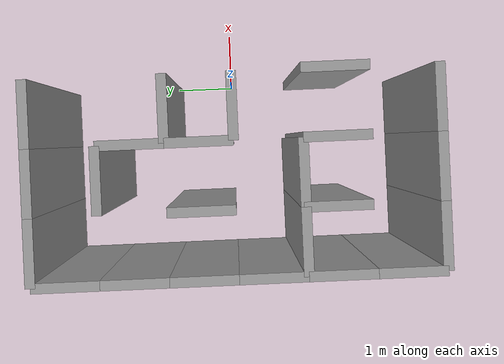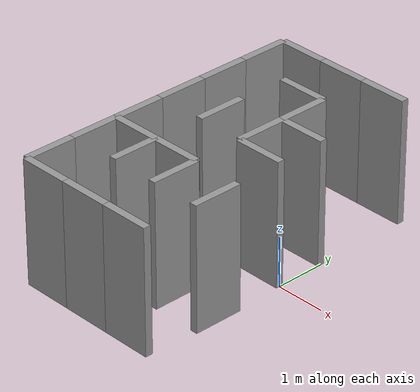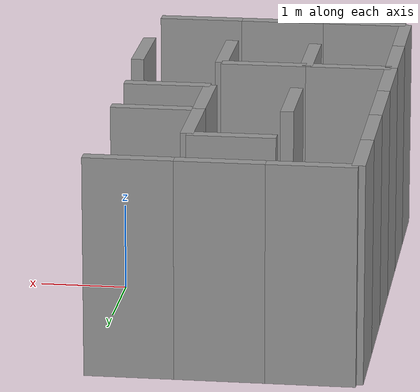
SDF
<sdf version="1.7">
 <model name="maze_6x6">
  <link name="mazeMap::Wall_102">
   <pose>-3 -1.5 0 0 -0 1.5708</pose>
   <inertial>
    <mass>1</mass>
    <inertia><ixx>1</ixx><ixy>0</ixy><ixz>0</ixz><iyy>1</iyy><iyz>0</iyz><izz>1</izz></inertia>
   </inertial>
   <visual name="Wall_102_Visual">
    <pose>0 0 1.25 0 -0 0</pose>
    <geometry><box><size>1 0.15 2.5</size></box></geometry>
    <material>
     <script><uri>file://media/materials/scripts/gazebo.material</uri><name>Gazebo/Grey</name></script>
     <ambient>1 1 1 1</ambient>
     <shader type="pixel"><normal_map>__default__</normal_map></shader>
     <diffuse>0.7 0.7 0.7 1</diffuse>
     <specular>0.01 0.01 0.01 1</specular>
     <emissive>0 0 0 1</emissive>
    </material>
    <meta><layer>0</layer></meta>
   </visual>
   <collision name="Wall_102_Collision">
    <pose>0 0 1.25 0 -0 0</pose>
    <geometry><box><size>1 0.15 2.5</size></box></geometry>
    <surface>
     <friction>
      <ode><mu>1</mu><mu2>1</mu2><fdir1>0 0 0</fdir1><slip1>0</slip1><slip2>0</slip2></ode>
      <torsional>
       <coefficient>1</coefficient>
       <patch_radius>0</patch_radius>
       <surface_radius>0</surface_radius>
       <use_patch_radius>1</use_patch_radius>
       <ode><slip>0</slip></ode>
      </torsional>
     </friction>
     <bounce><restitution_coefficient>0</restitution_coefficient><threshold>1e+06</threshold></bounce>
     <contact>
      <collide_without_contact>0</collide_without_contact>
      <collide_without_contact_bitmask>1</collide_without_contact_bitmask>
      <collide_bitmask>1</collide_bitmask>
      <ode>
       <soft_cfm>0</soft_cfm>
       <soft_erp>0.2</soft_erp>
       <kp>1e+13</kp>
       <kd>1</kd>
       <max_vel>0.01</max_vel>
       <min_depth>0</min_depth>
      </ode>
      <bullet>
       <split_impulse>1</split_impulse>
       <split_impulse_penetration_threshold>-0.01</split_impulse_penetration_threshold>
       <soft_cfm>0</soft_cfm>
       <soft_erp>0.2</soft_erp>
       <kp>1e+13</kp>
       <kd>1</kd>
      </bullet>
     </contact>
    </surface>
   </collision>
  </link>
  <link name="mazeMap::Wall_103">
   <pose>-2.5 -1 0 0 -0 0</pose>
   <inertial>
    <mass>1</mass>
    <inertia><ixx>1</ixx><ixy>0</ixy><ixz>0</ixz><iyy>1</iyy><iyz>0</iyz><izz>1</izz></inertia>
   </inertial>
   <visual name="Wall_103_Visual">
    <pose>0 0 1.25 0 -0 0</pose>
    <geometry><box><size>1 0.15 2.5</size></box></geometry>
    <material>
     <script><uri>file://media/materials/scripts/gazebo.material</uri><name>Gazebo/Grey</name></script>
     <ambient>1 1 1 1</ambient>
     <shader type="pixel"><normal_map>__default__</normal_map></shader>
     <diffuse>0.7 0.7 0.7 1</diffuse>
     <specular>0.01 0.01 0.01 1</specular>
     <emissive>0 0 0 1</emissive>
    </material>
    <meta><layer>0</layer></meta>
   </visual>
   <collision name="Wall_103_Collision">
    <pose>0 0 1.25 0 -0 0</pose>
    <geometry><box><size>1 0.15 2.5</size></box></geometry>
    <surface>
     <friction>
      <ode><mu>1</mu><mu2>1</mu2><fdir1>0 0 0</fdir1><slip1>0</slip1><slip2>0</slip2></ode>
      <torsional>
       <coefficient>1</coefficient>
       <patch_radius>0</patch_radius>
       <surface_radius>0</surface_radius>
       <use_patch_radius>1</use_patch_radius>
       <ode><slip>0</slip></ode>
      </torsional>
     </friction>
     <bounce><restitution_coefficient>0</restitution_coefficient><threshold>1e+06</threshold></bounce>
     <contact>
      <collide_without_contact>0</collide_without_contact>
      <collide_without_contact_bitmask>1</collide_without_contact_bitmask>
      <collide_bitmask>1</collide_bitmask>
      <ode>
       <soft_cfm>0</soft_cfm>
       <soft_erp>0.2</soft_erp>
       <kp>1e+13</kp>
       <kd>1</kd>
       <max_vel>0.01</max_vel>
       <min_depth>0</min_depth>
      </ode>
      <bullet>
       <split_impulse>1</split_impulse>
       <split_impulse_penetration_threshold>-0.01</split_impulse_penetration_threshold>
       <soft_cfm>0</soft_cfm>
       <soft_erp>0.2</soft_erp>
       <kp>1e+13</kp>
       <kd>1</kd>
      </bullet>
     </contact>
    </surface>
   </collision>
  </link>
  <link name="mazeMap::Wall_104">
   <pose>-2.00371 -1.46934 0 0 0 -1.5708</pose>
   <visual name="Wall_104_Visual">
    <pose>0 0 1.25 0 -0 0</pose>
    <geometry><box><size>1 0.15 2.5</size></box></geometry>
    <material>
     <script><uri>file://media/materials/scripts/gazebo.material</uri><name>Gazebo/Grey</name></script>
     <ambient>1 1 1 1</ambient>
     <shader type="pixel"/>
    </material>
    <meta><layer>0</layer></meta>
   </visual>
   <collision name="Wall_104_Collision">
    <pose>0 0 1.25 0 -0 0</pose>
    <geometry><box><size>1 0.15 2.5</size></box></geometry>
    <surface>
     <friction>
      <ode><mu>1</mu><mu2>1</mu2><fdir1>0 0 0</fdir1><slip1>0</slip1><slip2>0</slip2></ode>
      <torsional>
       <coefficient>1</coefficient>
       <patch_radius>0</patch_radius>
       <surface_radius>0</surface_radius>
       <use_patch_radius>1</use_patch_radius>
       <ode><slip>0</slip></ode>
      </torsional>
     </friction>
     <bounce><restitution_coefficient>0</restitution_coefficient><threshold>1e+06</threshold></bounce>
     <contact>
      <collide_without_contact>0</collide_without_contact>
      <collide_without_contact_bitmask>1</collide_without_contact_bitmask>
      <collide_bitmask>1</collide_bitmask>
      <ode>
       <soft_cfm>0</soft_cfm>
       <soft_erp>0.2</soft_erp>
       <kp>1e+13</kp>
       <kd>1</kd>
       <max_vel>0.01</max_vel>
       <min_depth>0</min_depth>
      </ode>
      <bullet>
       <split_impulse>1</split_impulse>
       <split_impulse_penetration_threshold>-0.01</split_impulse_penetration_threshold>
       <soft_cfm>0</soft_cfm>
       <soft_erp>0.2</soft_erp>
       <kp>1e+13</kp>
       <kd>1</kd>
      </bullet>
     </contact>
    </surface>
   </collision>
  </link>
  <link name="mazeMap::Wall_106">
   <pose>-3 -2.5 0 0 0 -1.5708</pose>
   <inertial>
    <mass>1</mass>
    <inertia><ixx>1</ixx><ixy>0</ixy><ixz>0</ixz><iyy>1</iyy><iyz>0</iyz><izz>1</izz></inertia>
   </inertial>
   <visual name="Wall_106_Visual">
    <pose>0 0 1.25 0 -0 0</pose>
    <geometry><box><size>1 0.15 2.5</size></box></geometry>
    <material>
     <script><uri>file://media/materials/scripts/gazebo.material</uri><name>Gazebo/Grey</name></script>
     <ambient>1 1 1 1</ambient>
     <shader type="pixel"><normal_map>__default__</normal_map></shader>
     <diffuse>0.7 0.7 0.7 1</diffuse>
     <specular>0.01 0.01 0.01 1</specular>
     <emissive>0 0 0 1</emissive>
    </material>
    <meta><layer>0</layer></meta>
   </visual>
   <collision name="Wall_106_Collision">
    <pose>0 0 1.25 0 -0 0</pose>
    <geometry><box><size>1 0.15 2.5</size></box></geometry>
    <surface>
     <friction>
      <ode><mu>1</mu><mu2>1</mu2><fdir1>0 0 0</fdir1><slip1>0</slip1><slip2>0</slip2></ode>
      <torsional>
       <coefficient>1</coefficient>
       <patch_radius>0</patch_radius>
       <surface_radius>0</surface_radius>
       <use_patch_radius>1</use_patch_radius>
       <ode><slip>0</slip></ode>
      </torsional>
     </friction>
     <bounce><restitution_coefficient>0</restitution_coefficient><threshold>1e+06</threshold></bounce>
     <contact>
      <collide_without_contact>0</collide_without_contact>
      <collide_without_contact_bitmask>1</collide_without_contact_bitmask>
      <collide_bitmask>1</collide_bitmask>
      <ode>
       <soft_cfm>0</soft_cfm>
       <soft_erp>0.2</soft_erp>
       <kp>1e+13</kp>
       <kd>1</kd>
       <max_vel>0.01</max_vel>
       <min_depth>0</min_depth>
      </ode>
      <bullet>
       <split_impulse>1</split_impulse>
       <split_impulse_penetration_threshold>-0.01</split_impulse_penetration_threshold>
       <soft_cfm>0</soft_cfm>
       <soft_erp>0.2</soft_erp>
       <kp>1e+13</kp>
       <kd>1</kd>
      </bullet>
     </contact>
    </surface>
   </collision>
  </link>
  <link name="mazeMap::Wall_108">
   <pose>-2.5 -3 0 0 -0 0</pose>
   <inertial>
    <mass>1</mass>
    <inertia><ixx>1</ixx><ixy>0</ixy><ixz>0</ixz><iyy>1</iyy><iyz>0</iyz><izz>1</izz></inertia>
   </inertial>
   <visual name="Wall_108_Visual">
    <pose>0 0 1.25 0 -0 0</pose>
    <geometry><box><size>1 0.15 2.5</size></box></geometry>
    <material>
     <script><uri>file://media/materials/scripts/gazebo.material</uri><name>Gazebo/Grey</name></script>
     <ambient>1 1 1 1</ambient>
     <shader type="pixel"><normal_map>__default__</normal_map></shader>
     <diffuse>0.7 0.7 0.7 1</diffuse>
     <specular>0.01 0.01 0.01 1</specular>
     <emissive>0 0 0 1</emissive>
    </material>
    <meta><layer>0</layer></meta>
   </visual>
   <collision name="Wall_108_Collision">
    <pose>0 0 1.25 0 -0 0</pose>
    <geometry><box><size>1 0.15 2.5</size></box></geometry>
    <surface>
     <friction>
      <ode><mu>1</mu><mu2>1</mu2><fdir1>0 0 0</fdir1><slip1>0</slip1><slip2>0</slip2></ode>
      <torsional>
       <coefficient>1</coefficient>
       <patch_radius>0</patch_radius>
       <surface_radius>0</surface_radius>
       <use_patch_radius>1</use_patch_radius>
       <ode><slip>0</slip></ode>
      </torsional>
     </friction>
     <bounce><restitution_coefficient>0</restitution_coefficient><threshold>1e+06</threshold></bounce>
     <contact>
      <collide_without_contact>0</collide_without_contact>
      <collide_without_contact_bitmask>1</collide_without_contact_bitmask>
      <collide_bitmask>1</collide_bitmask>
      <ode>
       <soft_cfm>0</soft_cfm>
       <soft_erp>0.2</soft_erp>
       <kp>1e+13</kp>
       <kd>1</kd>
       <max_vel>0.01</max_vel>
       <min_depth>0</min_depth>
      </ode>
      <bullet>
       <split_impulse>1</split_impulse>
       <split_impulse_penetration_threshold>-0.01</split_impulse_penetration_threshold>
       <soft_cfm>0</soft_cfm>
       <soft_erp>0.2</soft_erp>
       <kp>1e+13</kp>
       <kd>1</kd>
      </bullet>
     </contact>
    </surface>
   </collision>
  </link>
  <link name="mazeMap::Wall_111">
   <pose>-1 -1.5 0 0 -0 1.5708</pose>
   <inertial>
    <mass>1</mass>
    <inertia><ixx>1</ixx><ixy>0</ixy><ixz>0</ixz><iyy>1</iyy><iyz>0</iyz><izz>1</izz></inertia>
   </inertial>
   <visual name="Wall_111_Visual">
    <pose>0 0 1.25 0 -0 0</pose>
    <geometry><box><size>1 0.15 2.5</size></box></geometry>
    <material>
     <script><uri>file://media/materials/scripts/gazebo.material</uri><name>Gazebo/Grey</name></script>
     <ambient>1 1 1 1</ambient>
     <shader type="pixel"><normal_map>__default__</normal_map></shader>
     <diffuse>0.7 0.7 0.7 1</diffuse>
     <specular>0.01 0.01 0.01 1</specular>
     <emissive>0 0 0 1</emissive>
    </material>
    <meta><layer>0</layer></meta>
   </visual>
   <collision name="Wall_111_Collision">
    <pose>0 0 1.25 0 -0 0</pose>
    <geometry><box><size>1 0.15 2.5</size></box></geometry>
    <surface>
     <friction>
      <ode><mu>1</mu><mu2>1</mu2><fdir1>0 0 0</fdir1><slip1>0</slip1><slip2>0</slip2></ode>
      <torsional>
       <coefficient>1</coefficient>
       <patch_radius>0</patch_radius>
       <surface_radius>0</surface_radius>
       <use_patch_radius>1</use_patch_radius>
       <ode><slip>0</slip></ode>
      </torsional>
     </friction>
     <bounce><restitution_coefficient>0</restitution_coefficient><threshold>1e+06</threshold></bounce>
     <contact>
      <collide_without_contact>0</collide_without_contact>
      <collide_without_contact_bitmask>1</collide_without_contact_bitmask>
      <collide_bitmask>1</collide_bitmask>
      <ode>
       <soft_cfm>0</soft_cfm>
       <soft_erp>0.2</soft_erp>
       <kp>1e+13</kp>
       <kd>1</kd>
       <max_vel>0.01</max_vel>
       <min_depth>0</min_depth>
      </ode>
      <bullet>
       <split_impulse>1</split_impulse>
       <split_impulse_penetration_threshold>-0.01</split_impulse_penetration_threshold>
       <soft_cfm>0</soft_cfm>
       <soft_erp>0.2</soft_erp>
       <kp>1e+13</kp>
       <kd>1</kd>
      </bullet>
     </contact>
    </surface>
   </collision>
  </link>
  <link name="mazeMap::Wall_112">
   <pose>-1.5 -1 0 0 -0 3.14159</pose>
   <inertial>
    <mass>1</mass>
    <inertia><ixx>1</ixx><ixy>0</ixy><ixz>0</ixz><iyy>1</iyy><iyz>0</iyz><izz>1</izz></inertia>
   </inertial>
   <visual name="Wall_112_Visual">
    <pose>0 0 1.25 0 -0 0</pose>
    <geometry><box><size>1 0.15 2.5</size></box></geometry>
    <material>
     <script><uri>file://media/materials/scripts/gazebo.material</uri><name>Gazebo/Grey</name></script>
     <ambient>1 1 1 1</ambient>
     <shader type="pixel"><normal_map>__default__</normal_map></shader>
     <diffuse>0.7 0.7 0.7 1</diffuse>
     <specular>0.01 0.01 0.01 1</specular>
     <emissive>0 0 0 1</emissive>
    </material>
    <meta><layer>0</layer></meta>
   </visual>
   <collision name="Wall_112_Collision">
    <pose>0 0 1.25 0 -0 0</pose>
    <geometry><box><size>1 0.15 2.5</size></box></geometry>
    <surface>
     <friction>
      <ode><mu>1</mu><mu2>1</mu2><fdir1>0 0 0</fdir1><slip1>0</slip1><slip2>0</slip2></ode>
      <torsional>
       <coefficient>1</coefficient>
       <patch_radius>0</patch_radius>
       <surface_radius>0</surface_radius>
       <use_patch_radius>1</use_patch_radius>
       <ode><slip>0</slip></ode>
      </torsional>
     </friction>
     <bounce><restitution_coefficient>0</restitution_coefficient><threshold>1e+06</threshold></bounce>
     <contact>
      <collide_without_contact>0</collide_without_contact>
      <collide_without_contact_bitmask>1</collide_without_contact_bitmask>
      <collide_bitmask>1</collide_bitmask>
      <ode>
       <soft_cfm>0</soft_cfm>
       <soft_erp>0.2</soft_erp>
       <kp>1e+13</kp>
       <kd>1</kd>
       <max_vel>0.01</max_vel>
       <min_depth>0</min_depth>
      </ode>
      <bullet>
       <split_impulse>1</split_impulse>
       <split_impulse_penetration_threshold>-0.01</split_impulse_penetration_threshold>
       <soft_cfm>0</soft_cfm>
       <soft_erp>0.2</soft_erp>
       <kp>1e+13</kp>
       <kd>1</kd>
      </bullet>
     </contact>
    </surface>
   </collision>
  </link>
  <link name="mazeMap::Wall_118">
   <pose>-0.5 0 0 0 -0 3.14159</pose>
   <inertial>
    <mass>1</mass>
    <inertia><ixx>1</ixx><ixy>0</ixy><ixz>0</ixz><iyy>1</iyy><iyz>0</iyz><izz>1</izz></inertia>
   </inertial>
   <visual name="Wall_118_Visual">
    <pose>0 0 1.25 0 -0 0</pose>
    <geometry><box><size>1 0.15 2.5</size></box></geometry>
    <material>
     <script><uri>file://media/materials/scripts/gazebo.material</uri><name>Gazebo/Grey</name></script>
     <ambient>1 1 1 1</ambient>
     <shader type="pixel"><normal_map>__default__</normal_map></shader>
     <diffuse>0.7 0.7 0.7 1</diffuse>
     <specular>0.01 0.01 0.01 1</specular>
     <emissive>0 0 0 1</emissive>
    </material>
    <meta><layer>0</layer></meta>
   </visual>
   <collision name="Wall_118_Collision">
    <pose>0 0 1.25 0 -0 0</pose>
    <geometry><box><size>1 0.15 2.5</size></box></geometry>
    <surface>
     <friction>
      <ode><mu>1</mu><mu2>1</mu2><fdir1>0 0 0</fdir1><slip1>0</slip1><slip2>0</slip2></ode>
      <torsional>
       <coefficient>1</coefficient>
       <patch_radius>0</patch_radius>
       <surface_radius>0</surface_radius>
       <use_patch_radius>1</use_patch_radius>
       <ode><slip>0</slip></ode>
      </torsional>
     </friction>
     <bounce><restitution_coefficient>0</restitution_coefficient><threshold>1e+06</threshold></bounce>
     <contact>
      <collide_without_contact>0</collide_without_contact>
      <collide_without_contact_bitmask>1</collide_without_contact_bitmask>
      <collide_bitmask>1</collide_bitmask>
      <ode>
       <soft_cfm>0</soft_cfm>
       <soft_erp>0.2</soft_erp>
       <kp>1e+13</kp>
       <kd>1</kd>
       <max_vel>0.01</max_vel>
       <min_depth>0</min_depth>
      </ode>
      <bullet>
       <split_impulse>1</split_impulse>
       <split_impulse_penetration_threshold>-0.01</split_impulse_penetration_threshold>
       <soft_cfm>0</soft_cfm>
       <soft_erp>0.2</soft_erp>
       <kp>1e+13</kp>
       <kd>1</kd>
      </bullet>
     </contact>
    </surface>
   </collision>
  </link>
  <link name="mazeMap::Wall_120">
   <pose>-1 0.5 0 0 -0 1.5708</pose>
   <inertial>
    <mass>1</mass>
    <inertia><ixx>1</ixx><ixy>0</ixy><ixz>0</ixz><iyy>1</iyy><iyz>0</iyz><izz>1</izz></inertia>
   </inertial>
   <visual name="Wall_120_Visual">
    <pose>0 0 1.25 0 -0 0</pose>
    <geometry><box><size>1 0.15 2.5</size></box></geometry>
    <material>
     <script><uri>file://media/materials/scripts/gazebo.material</uri><name>Gazebo/Grey</name></script>
     <ambient>1 1 1 1</ambient>
     <shader type="pixel"><normal_map>__default__</normal_map></shader>
     <diffuse>0.7 0.7 0.7 1</diffuse>
     <specular>0.01 0.01 0.01 1</specular>
     <emissive>0 0 0 1</emissive>
    </material>
    <meta><layer>0</layer></meta>
   </visual>
   <collision name="Wall_120_Collision">
    <pose>0 0 1.25 0 -0 0</pose>
    <geometry><box><size>1 0.15 2.5</size></box></geometry>
    <surface>
     <friction>
      <ode><mu>1</mu><mu2>1</mu2><fdir1>0 0 0</fdir1><slip1>0</slip1><slip2>0</slip2></ode>
      <torsional>
       <coefficient>1</coefficient>
       <patch_radius>0</patch_radius>
       <surface_radius>0</surface_radius>
       <use_patch_radius>1</use_patch_radius>
       <ode><slip>0</slip></ode>
      </torsional>
     </friction>
     <bounce><restitution_coefficient>0</restitution_coefficient><threshold>1e+06</threshold></bounce>
     <contact>
      <collide_without_contact>0</collide_without_contact>
      <collide_without_contact_bitmask>1</collide_without_contact_bitmask>
      <collide_bitmask>1</collide_bitmask>
      <ode>
       <soft_cfm>0</soft_cfm>
       <soft_erp>0.2</soft_erp>
       <kp>1e+13</kp>
       <kd>1</kd>
       <max_vel>0.01</max_vel>
       <min_depth>0</min_depth>
      </ode>
      <bullet>
       <split_impulse>1</split_impulse>
       <split_impulse_penetration_threshold>-0.01</split_impulse_penetration_threshold>
       <soft_cfm>0</soft_cfm>
       <soft_erp>0.2</soft_erp>
       <kp>1e+13</kp>
       <kd>1</kd>
      </bullet>
     </contact>
    </surface>
   </collision>
  </link>
  <link name="mazeMap::Wall_121">
   <pose>-0.5 1 0 0 -0 0</pose>
   <inertial>
    <mass>1</mass>
    <inertia><ixx>1</ixx><ixy>0</ixy><ixz>0</ixz><iyy>1</iyy><iyz>0</iyz><izz>1</izz></inertia>
   </inertial>
   <visual name="Wall_121_Visual">
    <pose>0 0 1.25 0 -0 0</pose>
    <geometry><box><size>1 0.15 2.5</size></box></geometry>
    <material>
     <script><uri>file://media/materials/scripts/gazebo.material</uri><name>Gazebo/Grey</name></script>
     <ambient>1 1 1 1</ambient>
     <shader type="pixel"><normal_map>__default__</normal_map></shader>
     <diffuse>0.7 0.7 0.7 1</diffuse>
     <specular>0.01 0.01 0.01 1</specular>
     <emissive>0 0 0 1</emissive>
    </material>
    <meta><layer>0</layer></meta>
   </visual>
   <collision name="Wall_121_Collision">
    <pose>0 0 1.25 0 -0 0</pose>
    <geometry><box><size>1 0.15 2.5</size></box></geometry>
    <surface>
     <friction>
      <ode><mu>1</mu><mu2>1</mu2><fdir1>0 0 0</fdir1><slip1>0</slip1><slip2>0</slip2></ode>
      <torsional>
       <coefficient>1</coefficient>
       <patch_radius>0</patch_radius>
       <surface_radius>0</surface_radius>
       <use_patch_radius>1</use_patch_radius>
       <ode><slip>0</slip></ode>
      </torsional>
     </friction>
     <bounce><restitution_coefficient>0</restitution_coefficient><threshold>1e+06</threshold></bounce>
     <contact>
      <collide_without_contact>0</collide_without_contact>
      <collide_without_contact_bitmask>1</collide_without_contact_bitmask>
      <collide_bitmask>1</collide_bitmask>
      <ode>
       <soft_cfm>0</soft_cfm>
       <soft_erp>0.2</soft_erp>
       <kp>1e+13</kp>
       <kd>1</kd>
       <max_vel>0.01</max_vel>
       <min_depth>0</min_depth>
      </ode>
      <bullet>
       <split_impulse>1</split_impulse>
       <split_impulse_penetration_threshold>-0.01</split_impulse_penetration_threshold>
       <soft_cfm>0</soft_cfm>
       <soft_erp>0.2</soft_erp>
       <kp>1e+13</kp>
       <kd>1</kd>
      </bullet>
     </contact>
    </surface>
   </collision>
  </link>
  <link name="mazeMap::Wall_127">
   <pose>-1.5 -3 0 0 -0 0</pose>
   <inertial>
    <mass>1</mass>
    <inertia><ixx>1</ixx><ixy>0</ixy><ixz>0</ixz><iyy>1</iyy><iyz>0</iyz><izz>1</izz></inertia>
   </inertial>
   <visual name="Wall_127_Visual">
    <pose>0 0 1.25 0 -0 0</pose>
    <geometry><box><size>1 0.15 2.5</size></box></geometry>
    <material>
     <script><uri>file://media/materials/scripts/gazebo.material</uri><name>Gazebo/Grey</name></script>
     <ambient>1 1 1 1</ambient>
     <shader type="pixel"><normal_map>__default__</normal_map></shader>
     <diffuse>0.7 0.7 0.7 1</diffuse>
     <specular>0.01 0.01 0.01 1</specular>
     <emissive>0 0 0 1</emissive>
    </material>
    <meta><layer>0</layer></meta>
   </visual>
   <collision name="Wall_127_Collision">
    <pose>0 0 1.25 0 -0 0</pose>
    <geometry><box><size>1 0.15 2.5</size></box></geometry>
    <surface>
     <friction>
      <ode><mu>1</mu><mu2>1</mu2><fdir1>0 0 0</fdir1><slip1>0</slip1><slip2>0</slip2></ode>
      <torsional>
       <coefficient>1</coefficient>
       <patch_radius>0</patch_radius>
       <surface_radius>0</surface_radius>
       <use_patch_radius>1</use_patch_radius>
       <ode><slip>0</slip></ode>
      </torsional>
     </friction>
     <bounce><restitution_coefficient>0</restitution_coefficient><threshold>1e+06</threshold></bounce>
     <contact>
      <collide_without_contact>0</collide_without_contact>
      <collide_without_contact_bitmask>1</collide_without_contact_bitmask>
      <collide_bitmask>1</collide_bitmask>
      <ode>
       <soft_cfm>0</soft_cfm>
       <soft_erp>0.2</soft_erp>
       <kp>1e+13</kp>
       <kd>1</kd>
       <max_vel>0.01</max_vel>
       <min_depth>0</min_depth>
      </ode>
      <bullet>
       <split_impulse>1</split_impulse>
       <split_impulse_penetration_threshold>-0.01</split_impulse_penetration_threshold>
       <soft_cfm>0</soft_cfm>
       <soft_erp>0.2</soft_erp>
       <kp>1e+13</kp>
       <kd>1</kd>
      </bullet>
     </contact>
    </surface>
   </collision>
  </link>
  <link name="mazeMap::Wall_131">
   <pose>-0.5 -3 0 0 -0 3.14159</pose>
   <inertial>
    <mass>1</mass>
    <inertia><ixx>1</ixx><ixy>0</ixy><ixz>0</ixz><iyy>1</iyy><iyz>0</iyz><izz>1</izz></inertia>
   </inertial>
   <visual name="Wall_131_Visual">
    <pose>0 0 1.25 0 -0 0</pose>
    <geometry><box><size>1 0.15 2.5</size></box></geometry>
    <material>
     <script><uri>file://media/materials/scripts/gazebo.material</uri><name>Gazebo/Grey</name></script>
     <ambient>1 1 1 1</ambient>
     <shader type="pixel"><normal_map>__default__</normal_map></shader>
     <diffuse>0.7 0.7 0.7 1</diffuse>
     <specular>0.01 0.01 0.01 1</specular>
     <emissive>0 0 0 1</emissive>
    </material>
    <meta><layer>0</layer></meta>
   </visual>
   <collision name="Wall_131_Collision">
    <pose>0 0 1.25 0 -0 0</pose>
    <geometry><box><size>1 0.15 2.5</size></box></geometry>
    <surface>
     <friction>
      <ode><mu>1</mu><mu2>1</mu2><fdir1>0 0 0</fdir1><slip1>0</slip1><slip2>0</slip2></ode>
      <torsional>
       <coefficient>1</coefficient>
       <patch_radius>0</patch_radius>
       <surface_radius>0</surface_radius>
       <use_patch_radius>1</use_patch_radius>
       <ode><slip>0</slip></ode>
      </torsional>
     </friction>
     <bounce><restitution_coefficient>0</restitution_coefficient><threshold>1e+06</threshold></bounce>
     <contact>
      <collide_without_contact>0</collide_without_contact>
      <collide_without_contact_bitmask>1</collide_without_contact_bitmask>
      <collide_bitmask>1</collide_bitmask>
      <ode>
       <soft_cfm>0</soft_cfm>
       <soft_erp>0.2</soft_erp>
       <kp>1e+13</kp>
       <kd>1</kd>
       <max_vel>0.01</max_vel>
       <min_depth>0</min_depth>
      </ode>
      <bullet>
       <split_impulse>1</split_impulse>
       <split_impulse_penetration_threshold>-0.01</split_impulse_penetration_threshold>
       <soft_cfm>0</soft_cfm>
       <soft_erp>0.2</soft_erp>
       <kp>1e+13</kp>
       <kd>1</kd>
      </bullet>
     </contact>
    </surface>
   </collision>
  </link>
  <link name="mazeMap::Wall_136">
   <pose>0 -1.5 0 0 -0 1.5708</pose>
   <inertial>
    <mass>1</mass>
    <inertia><ixx>1</ixx><ixy>0</ixy><ixz>0</ixz><iyy>1</iyy><iyz>0</iyz><izz>1</izz></inertia>
   </inertial>
   <visual name="Wall_136_Visual">
    <pose>0 0 1.25 0 -0 0</pose>
    <geometry><box><size>1 0.15 2.5</size></box></geometry>
    <material>
     <script><uri>file://media/materials/scripts/gazebo.material</uri><name>Gazebo/Grey</name></script>
     <ambient>1 1 1 1</ambient>
     <shader type="pixel"><normal_map>__default__</normal_map></shader>
     <diffuse>0.7 0.7 0.7 1</diffuse>
     <specular>0.01 0.01 0.01 1</specular>
     <emissive>0 0 0 1</emissive>
    </material>
    <meta><layer>0</layer></meta>
   </visual>
   <collision name="Wall_136_Collision">
    <pose>0 0 1.25 0 -0 0</pose>
    <geometry><box><size>1 0.15 2.5</size></box></geometry>
    <surface>
     <friction>
      <ode><mu>1</mu><mu2>1</mu2><fdir1>0 0 0</fdir1><slip1>0</slip1><slip2>0</slip2></ode>
      <torsional>
       <coefficient>1</coefficient>
       <patch_radius>0</patch_radius>
       <surface_radius>0</surface_radius>
       <use_patch_radius>1</use_patch_radius>
       <ode><slip>0</slip></ode>
      </torsional>
     </friction>
     <bounce><restitution_coefficient>0</restitution_coefficient><threshold>1e+06</threshold></bounce>
     <contact>
      <collide_without_contact>0</collide_without_contact>
      <collide_without_contact_bitmask>1</collide_without_contact_bitmask>
      <collide_bitmask>1</collide_bitmask>
      <ode>
       <soft_cfm>0</soft_cfm>
       <soft_erp>0.2</soft_erp>
       <kp>1e+13</kp>
       <kd>1</kd>
       <max_vel>0.01</max_vel>
       <min_depth>0</min_depth>
      </ode>
      <bullet>
       <split_impulse>1</split_impulse>
       <split_impulse_penetration_threshold>-0.01</split_impulse_penetration_threshold>
       <soft_cfm>0</soft_cfm>
       <soft_erp>0.2</soft_erp>
       <kp>1e+13</kp>
       <kd>1</kd>
      </bullet>
     </contact>
    </surface>
   </collision>
  </link>
  <link name="mazeMap::Wall_166">
   <pose>-2 0.5 0 0 0 -1.5708</pose>
   <inertial>
    <mass>1</mass>
    <inertia><ixx>1</ixx><ixy>0</ixy><ixz>0</ixz><iyy>1</iyy><iyz>0</iyz><izz>1</izz></inertia>
   </inertial>
   <visual name="Wall_166_Visual">
    <pose>0 0 1.25 0 -0 0</pose>
    <geometry><box><size>1 0.15 2.5</size></box></geometry>
    <material>
     <script><uri>file://media/materials/scripts/gazebo.material</uri><name>Gazebo/Grey</name></script>
     <ambient>1 1 1 1</ambient>
     <shader type="pixel"><normal_map>__default__</normal_map></shader>
     <diffuse>0.7 0.7 0.7 1</diffuse>
     <specular>0.01 0.01 0.01 1</specular>
     <emissive>0 0 0 1</emissive>
    </material>
    <meta><layer>0</layer></meta>
   </visual>
   <collision name="Wall_166_Collision">
    <pose>0 0 1.25 0 -0 0</pose>
    <geometry><box><size>1 0.15 2.5</size></box></geometry>
    <surface>
     <friction>
      <ode><mu>1</mu><mu2>1</mu2><fdir1>0 0 0</fdir1><slip1>0</slip1><slip2>0</slip2></ode>
      <torsional>
       <coefficient>1</coefficient>
       <patch_radius>0</patch_radius>
       <surface_radius>0</surface_radius>
       <use_patch_radius>1</use_patch_radius>
       <ode><slip>0</slip></ode>
      </torsional>
     </friction>
     <bounce><restitution_coefficient>0</restitution_coefficient><threshold>1e+06</threshold></bounce>
     <contact>
      <collide_without_contact>0</collide_without_contact>
      <collide_without_contact_bitmask>1</collide_without_contact_bitmask>
      <collide_bitmask>1</collide_bitmask>
      <ode>
       <soft_cfm>0</soft_cfm>
       <soft_erp>0.2</soft_erp>
       <kp>1e+13</kp>
       <kd>1</kd>
       <max_vel>0.01</max_vel>
       <min_depth>0</min_depth>
      </ode>
      <bullet>
       <split_impulse>1</split_impulse>
       <split_impulse_penetration_threshold>-0.01</split_impulse_penetration_threshold>
       <soft_cfm>0</soft_cfm>
       <soft_erp>0.2</soft_erp>
       <kp>1e+13</kp>
       <kd>1</kd>
      </bullet>
     </contact>
    </surface>
   </collision>
  </link>
  <link name="mazeMap::Wall_169">
   <pose>-3 0.5 0 0 0 -1.5708</pose>
   <inertial>
    <mass>1</mass>
    <inertia><ixx>1</ixx><ixy>0</ixy><ixz>0</ixz><iyy>1</iyy><iyz>0</iyz><izz>1</izz></inertia>
   </inertial>
   <visual name="Wall_169_Visual">
    <pose>0 0 1.25 0 -0 0</pose>
    <geometry><box><size>1 0.15 2.5</size></box></geometry>
    <material>
     <script><uri>file://media/materials/scripts/gazebo.material</uri><name>Gazebo/Grey</name></script>
     <ambient>1 1 1 1</ambient>
     <shader type="pixel"><normal_map>__default__</normal_map></shader>
     <diffuse>0.7 0.7 0.7 1</diffuse>
     <specular>0.01 0.01 0.01 1</specular>
     <emissive>0 0 0 1</emissive>
    </material>
    <meta><layer>0</layer></meta>
   </visual>
   <collision name="Wall_169_Collision">
    <pose>0 0 1.25 0 -0 0</pose>
    <geometry><box><size>1 0.15 2.5</size></box></geometry>
    <surface>
     <friction>
      <ode><mu>1</mu><mu2>1</mu2><fdir1>0 0 0</fdir1><slip1>0</slip1><slip2>0</slip2></ode>
      <torsional>
       <coefficient>1</coefficient>
       <patch_radius>0</patch_radius>
       <surface_radius>0</surface_radius>
       <use_patch_radius>1</use_patch_radius>
       <ode><slip>0</slip></ode>
      </torsional>
     </friction>
     <bounce><restitution_coefficient>0</restitution_coefficient><threshold>1e+06</threshold></bounce>
     <contact>
      <collide_without_contact>0</collide_without_contact>
      <collide_without_contact_bitmask>1</collide_without_contact_bitmask>
      <collide_bitmask>1</collide_bitmask>
      <ode>
       <soft_cfm>0</soft_cfm>
       <soft_erp>0.2</soft_erp>
       <kp>1e+13</kp>
       <kd>1</kd>
       <max_vel>0.01</max_vel>
       <min_depth>0</min_depth>
      </ode>
      <bullet>
       <split_impulse>1</split_impulse>
       <split_impulse_penetration_threshold>-0.01</split_impulse_penetration_threshold>
       <soft_cfm>0</soft_cfm>
       <soft_erp>0.2</soft_erp>
       <kp>1e+13</kp>
       <kd>1</kd>
      </bullet>
     </contact>
    </surface>
   </collision>
  </link>
  <link name="mazeMap::Wall_172">
   <pose>-3 -0.5 0 0 0 -1.5708</pose>
   <inertial>
    <mass>1</mass>
    <inertia><ixx>1</ixx><ixy>0</ixy><ixz>0</ixz><iyy>1</iyy><iyz>0</iyz><izz>1</izz></inertia>
   </inertial>
   <visual name="Wall_172_Visual">
    <pose>0 0 1.25 0 -0 0</pose>
    <geometry><box><size>1 0.15 2.5</size></box></geometry>
    <material>
     <script><uri>file://media/materials/scripts/gazebo.material</uri><name>Gazebo/Grey</name></script>
     <ambient>1 1 1 1</ambient>
     <shader type="pixel"><normal_map>__default__</normal_map></shader>
     <diffuse>0.7 0.7 0.7 1</diffuse>
     <specular>0.01 0.01 0.01 1</specular>
     <emissive>0 0 0 1</emissive>
    </material>
    <meta><layer>0</layer></meta>
   </visual>
   <collision name="Wall_172_Collision">
    <pose>0 0 1.25 0 -0 0</pose>
    <geometry><box><size>1 0.15 2.5</size></box></geometry>
    <surface>
     <friction>
      <ode><mu>1</mu><mu2>1</mu2><fdir1>0 0 0</fdir1><slip1>0</slip1><slip2>0</slip2></ode>
      <torsional>
       <coefficient>1</coefficient>
       <patch_radius>0</patch_radius>
       <surface_radius>0</surface_radius>
       <use_patch_radius>1</use_patch_radius>
       <ode><slip>0</slip></ode>
      </torsional>
     </friction>
     <bounce><restitution_coefficient>0</restitution_coefficient><threshold>1e+06</threshold></bounce>
     <contact>
      <collide_without_contact>0</collide_without_contact>
      <collide_without_contact_bitmask>1</collide_without_contact_bitmask>
      <collide_bitmask>1</collide_bitmask>
      <ode>
       <soft_cfm>0</soft_cfm>
       <soft_erp>0.2</soft_erp>
       <kp>1e+13</kp>
       <kd>1</kd>
       <max_vel>0.01</max_vel>
       <min_depth>0</min_depth>
      </ode>
      <bullet>
       <split_impulse>1</split_impulse>
       <split_impulse_penetration_threshold>-0.01</split_impulse_penetration_threshold>
       <soft_cfm>0</soft_cfm>
       <soft_erp>0.2</soft_erp>
       <kp>1e+13</kp>
       <kd>1</kd>
      </bullet>
     </contact>
    </surface>
   </collision>
  </link>
  <link name="mazeMap::Wall_174">
   <pose>-3 1.5 0 0 -0 1.5708</pose>
   <inertial>
    <mass>1</mass>
    <inertia><ixx>1</ixx><ixy>0</ixy><ixz>0</ixz><iyy>1</iyy><iyz>0</iyz><izz>1</izz></inertia>
   </inertial>
   <visual name="Wall_174_Visual">
    <pose>0 0 1.25 0 -0 0</pose>
    <geometry><box><size>1 0.15 2.5</size></box></geometry>
    <material>
     <script><uri>file://media/materials/scripts/gazebo.material</uri><name>Gazebo/Grey</name></script>
     <ambient>1 1 1 1</ambient>
     <shader type="pixel"><normal_map>__default__</normal_map></shader>
     <diffuse>0.7 0.7 0.7 1</diffuse>
     <specular>0.01 0.01 0.01 1</specular>
     <emissive>0 0 0 1</emissive>
    </material>
    <meta><layer>0</layer></meta>
   </visual>
   <collision name="Wall_174_Collision">
    <pose>0 0 1.25 0 -0 0</pose>
    <geometry><box><size>1 0.15 2.5</size></box></geometry>
    <surface>
     <friction>
      <ode><mu>1</mu><mu2>1</mu2><fdir1>0 0 0</fdir1><slip1>0</slip1><slip2>0</slip2></ode>
      <torsional>
       <coefficient>1</coefficient>
       <patch_radius>0</patch_radius>
       <surface_radius>0</surface_radius>
       <use_patch_radius>1</use_patch_radius>
       <ode><slip>0</slip></ode>
      </torsional>
     </friction>
     <bounce><restitution_coefficient>0</restitution_coefficient><threshold>1e+06</threshold></bounce>
     <contact>
      <collide_without_contact>0</collide_without_contact>
      <collide_without_contact_bitmask>1</collide_without_contact_bitmask>
      <collide_bitmask>1</collide_bitmask>
      <ode>
       <soft_cfm>0</soft_cfm>
       <soft_erp>0.2</soft_erp>
       <kp>1e+13</kp>
       <kd>1</kd>
       <max_vel>0.01</max_vel>
       <min_depth>0</min_depth>
      </ode>
      <bullet>
       <split_impulse>1</split_impulse>
       <split_impulse_penetration_threshold>-0.01</split_impulse_penetration_threshold>
       <soft_cfm>0</soft_cfm>
       <soft_erp>0.2</soft_erp>
       <kp>1e+13</kp>
       <kd>1</kd>
      </bullet>
     </contact>
    </surface>
   </collision>
  </link>
  <link name="mazeMap::Wall_177">
   <pose>-2.5 3 0 0 -0 3.14159</pose>
   <inertial>
    <mass>1</mass>
    <inertia><ixx>1</ixx><ixy>0</ixy><ixz>0</ixz><iyy>1</iyy><iyz>0</iyz><izz>1</izz></inertia>
   </inertial>
   <visual name="Wall_177_Visual">
    <pose>0 0 1.25 0 -0 0</pose>
    <geometry><box><size>1 0.15 2.5</size></box></geometry>
    <material>
     <script><uri>file://media/materials/scripts/gazebo.material</uri><name>Gazebo/Grey</name></script>
     <ambient>1 1 1 1</ambient>
     <shader type="pixel"><normal_map>__default__</normal_map></shader>
     <diffuse>0.7 0.7 0.7 1</diffuse>
     <specular>0.01 0.01 0.01 1</specular>
     <emissive>0 0 0 1</emissive>
    </material>
    <meta><layer>0</layer></meta>
   </visual>
   <collision name="Wall_177_Collision">
    <pose>0 0 1.25 0 -0 0</pose>
    <geometry><box><size>1 0.15 2.5</size></box></geometry>
    <surface>
     <friction>
      <ode><mu>1</mu><mu2>1</mu2><fdir1>0 0 0</fdir1><slip1>0</slip1><slip2>0</slip2></ode>
      <torsional>
       <coefficient>1</coefficient>
       <patch_radius>0</patch_radius>
       <surface_radius>0</surface_radius>
       <use_patch_radius>1</use_patch_radius>
       <ode><slip>0</slip></ode>
      </torsional>
     </friction>
     <bounce><restitution_coefficient>0</restitution_coefficient><threshold>1e+06</threshold></bounce>
     <contact>
      <collide_without_contact>0</collide_without_contact>
      <collide_without_contact_bitmask>1</collide_without_contact_bitmask>
      <collide_bitmask>1</collide_bitmask>
      <ode>
       <soft_cfm>0</soft_cfm>
       <soft_erp>0.2</soft_erp>
       <kp>1e+13</kp>
       <kd>1</kd>
       <max_vel>0.01</max_vel>
       <min_depth>0</min_depth>
      </ode>
      <bullet>
       <split_impulse>1</split_impulse>
       <split_impulse_penetration_threshold>-0.01</split_impulse_penetration_threshold>
       <soft_cfm>0</soft_cfm>
       <soft_erp>0.2</soft_erp>
       <kp>1e+13</kp>
       <kd>1</kd>
      </bullet>
     </contact>
    </surface>
   </collision>
  </link>
  <link name="mazeMap::Wall_178">
   <pose>-3 2.49509 0 0 0 -1.5708</pose>
   <inertial>
    <mass>1</mass>
    <inertia><ixx>1</ixx><ixy>0</ixy><ixz>0</ixz><iyy>1</iyy><iyz>0</iyz><izz>1</izz></inertia>
   </inertial>
   <visual name="Wall_178_Visual">
    <pose>0 0 1.25 0 -0 0</pose>
    <geometry><box><size>1 0.15 2.5</size></box></geometry>
    <material>
     <script><uri>file://media/materials/scripts/gazebo.material</uri><name>Gazebo/Grey</name></script>
     <ambient>1 1 1 1</ambient>
     <shader type="pixel"><normal_map>__default__</normal_map></shader>
     <diffuse>0.7 0.7 0.7 1</diffuse>
     <specular>0.01 0.01 0.01 1</specular>
     <emissive>0 0 0 1</emissive>
    </material>
    <meta><layer>0</layer></meta>
   </visual>
   <collision name="Wall_178_Collision">
    <pose>0 0 1.25 0 -0 0</pose>
    <geometry><box><size>1 0.15 2.5</size></box></geometry>
    <surface>
     <friction>
      <ode><mu>1</mu><mu2>1</mu2><fdir1>0 0 0</fdir1><slip1>0</slip1><slip2>0</slip2></ode>
      <torsional>
       <coefficient>1</coefficient>
       <patch_radius>0</patch_radius>
       <surface_radius>0</surface_radius>
       <use_patch_radius>1</use_patch_radius>
       <ode><slip>0</slip></ode>
      </torsional>
     </friction>
     <bounce><restitution_coefficient>0</restitution_coefficient><threshold>1e+06</threshold></bounce>
     <contact>
      <collide_without_contact>0</collide_without_contact>
      <collide_without_contact_bitmask>1</collide_without_contact_bitmask>
      <collide_bitmask>1</collide_bitmask>
      <ode>
       <soft_cfm>0</soft_cfm>
       <soft_erp>0.2</soft_erp>
       <kp>1e+13</kp>
       <kd>1</kd>
       <max_vel>0.01</max_vel>
       <min_depth>0</min_depth>
      </ode>
      <bullet>
       <split_impulse>1</split_impulse>
       <split_impulse_penetration_threshold>-0.01</split_impulse_penetration_threshold>
       <soft_cfm>0</soft_cfm>
       <soft_erp>0.2</soft_erp>
       <kp>1e+13</kp>
       <kd>1</kd>
      </bullet>
     </contact>
    </surface>
   </collision>
  </link>
  <link name="mazeMap::Wall_181">
   <pose>-1.5 2 0 0 -0 0</pose>
   <inertial>
    <mass>1</mass>
    <inertia><ixx>1</ixx><ixy>0</ixy><ixz>0</ixz><iyy>1</iyy><iyz>0</iyz><izz>1</izz></inertia>
   </inertial>
   <visual name="Wall_181_Visual">
    <pose>0 0 1.25 0 -0 0</pose>
    <geometry><box><size>1 0.15 2.5</size></box></geometry>
    <material>
     <script><uri>file://media/materials/scripts/gazebo.material</uri><name>Gazebo/Grey</name></script>
     <ambient>1 1 1 1</ambient>
     <shader type="pixel"><normal_map>__default__</normal_map></shader>
     <diffuse>0.7 0.7 0.7 1</diffuse>
     <specular>0.01 0.01 0.01 1</specular>
     <emissive>0 0 0 1</emissive>
    </material>
    <meta><layer>0</layer></meta>
   </visual>
   <collision name="Wall_181_Collision">
    <pose>0 0 1.25 0 -0 0</pose>
    <geometry><box><size>1 0.15 2.5</size></box></geometry>
    <surface>
     <friction>
      <ode><mu>1</mu><mu2>1</mu2><fdir1>0 0 0</fdir1><slip1>0</slip1><slip2>0</slip2></ode>
      <torsional>
       <coefficient>1</coefficient>
       <patch_radius>0</patch_radius>
       <surface_radius>0</surface_radius>
       <use_patch_radius>1</use_patch_radius>
       <ode><slip>0</slip></ode>
      </torsional>
     </friction>
     <bounce><restitution_coefficient>0</restitution_coefficient><threshold>1e+06</threshold></bounce>
     <contact>
      <collide_without_contact>0</collide_without_contact>
      <collide_without_contact_bitmask>1</collide_without_contact_bitmask>
      <collide_bitmask>1</collide_bitmask>
      <ode>
       <soft_cfm>0</soft_cfm>
       <soft_erp>0.2</soft_erp>
       <kp>1e+13</kp>
       <kd>1</kd>
       <max_vel>0.01</max_vel>
       <min_depth>0</min_depth>
      </ode>
      <bullet>
       <split_impulse>1</split_impulse>
       <split_impulse_penetration_threshold>-0.01</split_impulse_penetration_threshold>
       <soft_cfm>0</soft_cfm>
       <soft_erp>0.2</soft_erp>
       <kp>1e+13</kp>
       <kd>1</kd>
      </bullet>
     </contact>
    </surface>
   </collision>
  </link>
  <link name="mazeMap::Wall_183">
   <pose>-1.5 3 0 0 -0 3.14159</pose>
   <inertial>
    <mass>1</mass>
    <inertia><ixx>1</ixx><ixy>0</ixy><ixz>0</ixz><iyy>1</iyy><iyz>0</iyz><izz>1</izz></inertia>
   </inertial>
   <visual name="Wall_183_Visual">
    <pose>0 0 1.25 0 -0 0</pose>
    <geometry><box><size>1 0.15 2.5</size></box></geometry>
    <material>
     <script><uri>file://media/materials/scripts/gazebo.material</uri><name>Gazebo/Grey</name></script>
     <ambient>1 1 1 1</ambient>
     <shader type="pixel"><normal_map>__default__</normal_map></shader>
     <diffuse>0.7 0.7 0.7 1</diffuse>
     <specular>0.01 0.01 0.01 1</specular>
     <emissive>0 0 0 1</emissive>
    </material>
    <meta><layer>0</layer></meta>
   </visual>
   <collision name="Wall_183_Collision">
    <pose>0 0 1.25 0 -0 0</pose>
    <geometry><box><size>1 0.15 2.5</size></box></geometry>
    <surface>
     <friction>
      <ode><mu>1</mu><mu2>1</mu2><fdir1>0 0 0</fdir1><slip1>0</slip1><slip2>0</slip2></ode>
      <torsional>
       <coefficient>1</coefficient>
       <patch_radius>0</patch_radius>
       <surface_radius>0</surface_radius>
       <use_patch_radius>1</use_patch_radius>
       <ode><slip>0</slip></ode>
      </torsional>
     </friction>
     <bounce><restitution_coefficient>0</restitution_coefficient><threshold>1e+06</threshold></bounce>
     <contact>
      <collide_without_contact>0</collide_without_contact>
      <collide_without_contact_bitmask>1</collide_without_contact_bitmask>
      <collide_bitmask>1</collide_bitmask>
      <ode>
       <soft_cfm>0</soft_cfm>
       <soft_erp>0.2</soft_erp>
       <kp>1e+13</kp>
       <kd>1</kd>
       <max_vel>0.01</max_vel>
       <min_depth>0</min_depth>
      </ode>
      <bullet>
       <split_impulse>1</split_impulse>
       <split_impulse_penetration_threshold>-0.01</split_impulse_penetration_threshold>
       <soft_cfm>0</soft_cfm>
       <soft_erp>0.2</soft_erp>
       <kp>1e+13</kp>
       <kd>1</kd>
      </bullet>
     </contact>
    </surface>
   </collision>
  </link>
  <link name="mazeMap::Wall_185">
   <pose>-0.5 3 0 0 -0 0</pose>
   <inertial>
    <mass>1</mass>
    <inertia><ixx>1</ixx><ixy>0</ixy><ixz>0</ixz><iyy>1</iyy><iyz>0</iyz><izz>1</izz></inertia>
   </inertial>
   <visual name="Wall_185_Visual">
    <pose>0 0 1.25 0 -0 0</pose>
    <geometry><box><size>1 0.15 2.5</size></box></geometry>
    <material>
     <script><uri>file://media/materials/scripts/gazebo.material</uri><name>Gazebo/Grey</name></script>
     <ambient>1 1 1 1</ambient>
     <shader type="pixel"><normal_map>__default__</normal_map></shader>
     <diffuse>0.7 0.7 0.7 1</diffuse>
     <specular>0.01 0.01 0.01 1</specular>
     <emissive>0 0 0 1</emissive>
    </material>
    <meta><layer>0</layer></meta>
   </visual>
   <collision name="Wall_185_Collision">
    <pose>0 0 1.25 0 -0 0</pose>
    <geometry><box><size>1 0.15 2.5</size></box></geometry>
    <surface>
     <friction>
      <ode><mu>1</mu><mu2>1</mu2><fdir1>0 0 0</fdir1><slip1>0</slip1><slip2>0</slip2></ode>
      <torsional>
       <coefficient>1</coefficient>
       <patch_radius>0</patch_radius>
       <surface_radius>0</surface_radius>
       <use_patch_radius>1</use_patch_radius>
       <ode><slip>0</slip></ode>
      </torsional>
     </friction>
     <bounce><restitution_coefficient>0</restitution_coefficient><threshold>1e+06</threshold></bounce>
     <contact>
      <collide_without_contact>0</collide_without_contact>
      <collide_without_contact_bitmask>1</collide_without_contact_bitmask>
      <collide_bitmask>1</collide_bitmask>
      <ode>
       <soft_cfm>0</soft_cfm>
       <soft_erp>0.2</soft_erp>
       <kp>1e+13</kp>
       <kd>1</kd>
       <max_vel>0.01</max_vel>
       <min_depth>0</min_depth>
      </ode>
      <bullet>
       <split_impulse>1</split_impulse>
       <split_impulse_penetration_threshold>-0.01</split_impulse_penetration_threshold>
       <soft_cfm>0</soft_cfm>
       <soft_erp>0.2</soft_erp>
       <kp>1e+13</kp>
       <kd>1</kd>
      </bullet>
     </contact>
    </surface>
   </collision>
  </link>
  <link name="mazeMap::Wall_203">
   <pose>-1 1.5 0 0 0 -1.5708</pose>
   <inertial>
    <mass>1</mass>
    <inertia><ixx>1</ixx><ixy>0</ixy><ixz>0</ixz><iyy>1</iyy><iyz>0</iyz><izz>1</izz></inertia>
   </inertial>
   <visual name="Wall_203_Visual">
    <pose>0 0 1.25 0 -0 0</pose>
    <geometry><box><size>1 0.15 2.5</size></box></geometry>
    <material>
     <script><uri>file://media/materials/scripts/gazebo.material</uri><name>Gazebo/Grey</name></script>
     <ambient>1 1 1 1</ambient>
     <shader type="pixel"><normal_map>__default__</normal_map></shader>
     <diffuse>0.7 0.7 0.7 1</diffuse>
     <specular>0.01 0.01 0.01 1</specular>
     <emissive>0 0 0 1</emissive>
    </material>
    <meta><layer>0</layer></meta>
   </visual>
   <collision name="Wall_203_Collision">
    <pose>0 0 1.25 0 -0 0</pose>
    <geometry><box><size>1 0.15 2.5</size></box></geometry>
    <surface>
     <friction>
      <ode><mu>1</mu><mu2>1</mu2><fdir1>0 0 0</fdir1><slip1>0</slip1><slip2>0</slip2></ode>
      <torsional>
       <coefficient>1</coefficient>
       <patch_radius>0</patch_radius>
       <surface_radius>0</surface_radius>
       <use_patch_radius>1</use_patch_radius>
       <ode><slip>0</slip></ode>
      </torsional>
     </friction>
     <bounce><restitution_coefficient>0</restitution_coefficient><threshold>1e+06</threshold></bounce>
     <contact>
      <collide_without_contact>0</collide_without_contact>
      <collide_without_contact_bitmask>1</collide_without_contact_bitmask>
      <collide_bitmask>1</collide_bitmask>
      <ode>
       <soft_cfm>0</soft_cfm>
       <soft_erp>0.2</soft_erp>
       <kp>1e+13</kp>
       <kd>1</kd>
       <max_vel>0.01</max_vel>
       <min_depth>0</min_depth>
      </ode>
      <bullet>
       <split_impulse>1</split_impulse>
       <split_impulse_penetration_threshold>-0.01</split_impulse_penetration_threshold>
       <soft_cfm>0</soft_cfm>
       <soft_erp>0.2</soft_erp>
       <kp>1e+13</kp>
       <kd>1</kd>
      </bullet>
     </contact>
    </surface>
   </collision>
  </link>
  <static>1</static>
 </model>
</sdf>
